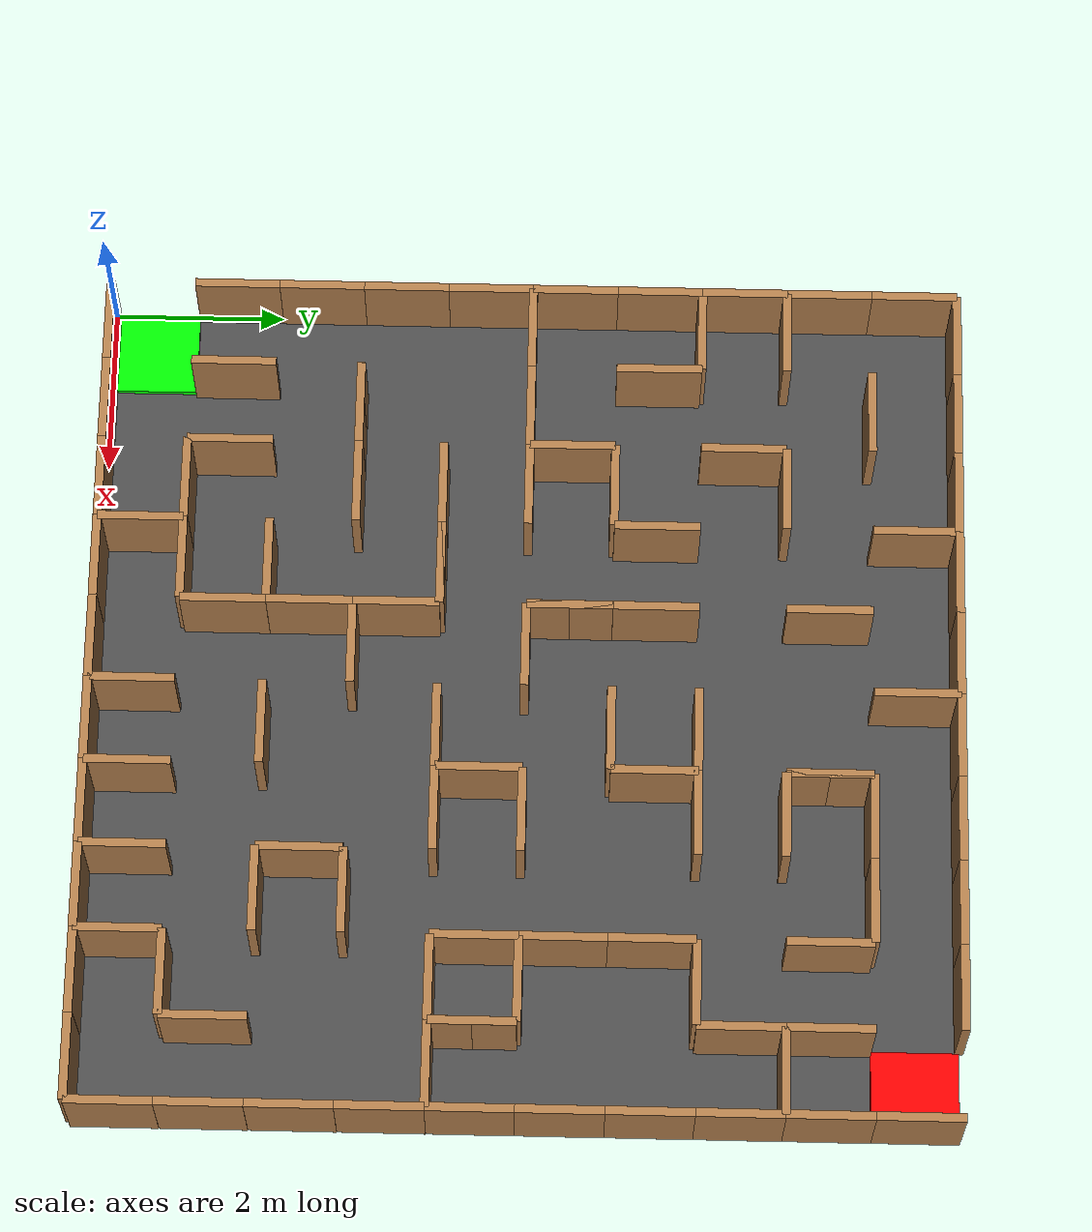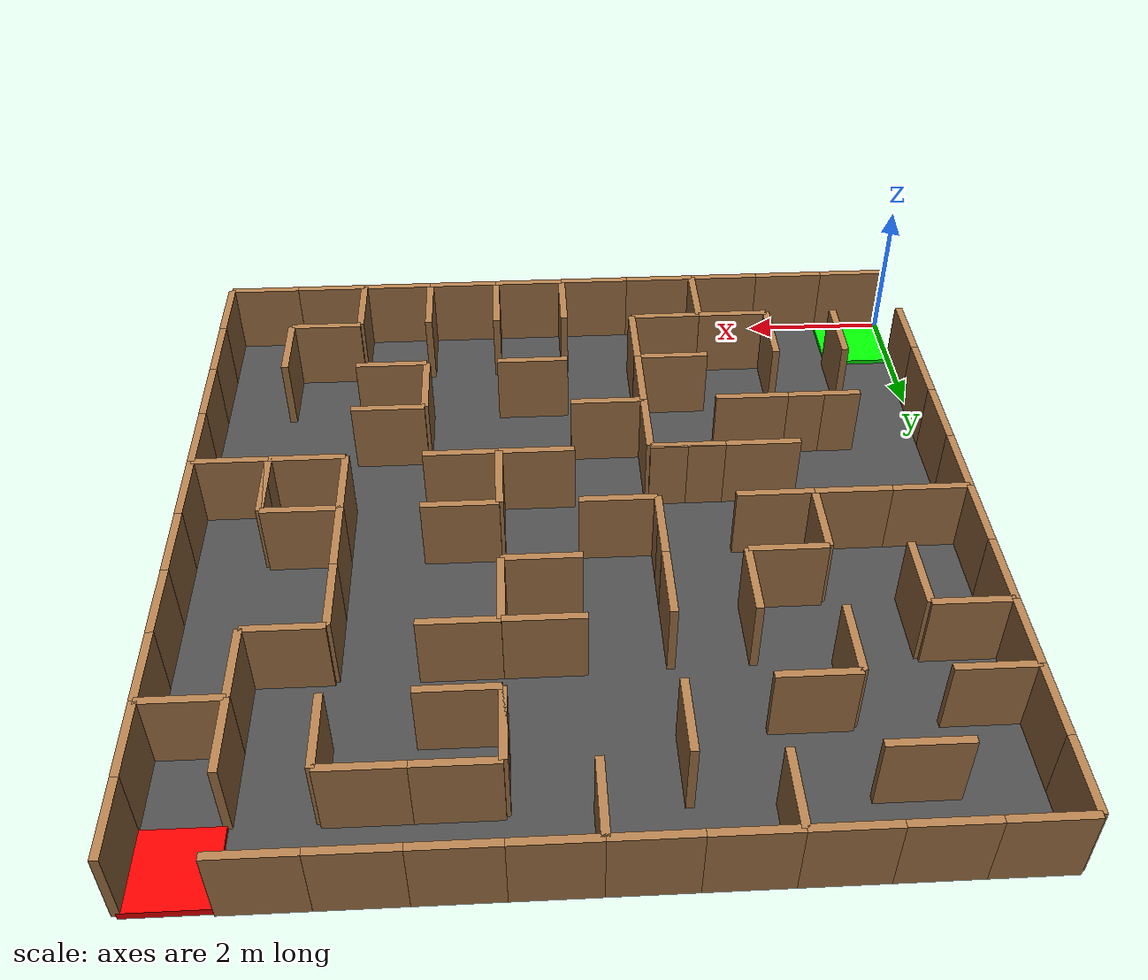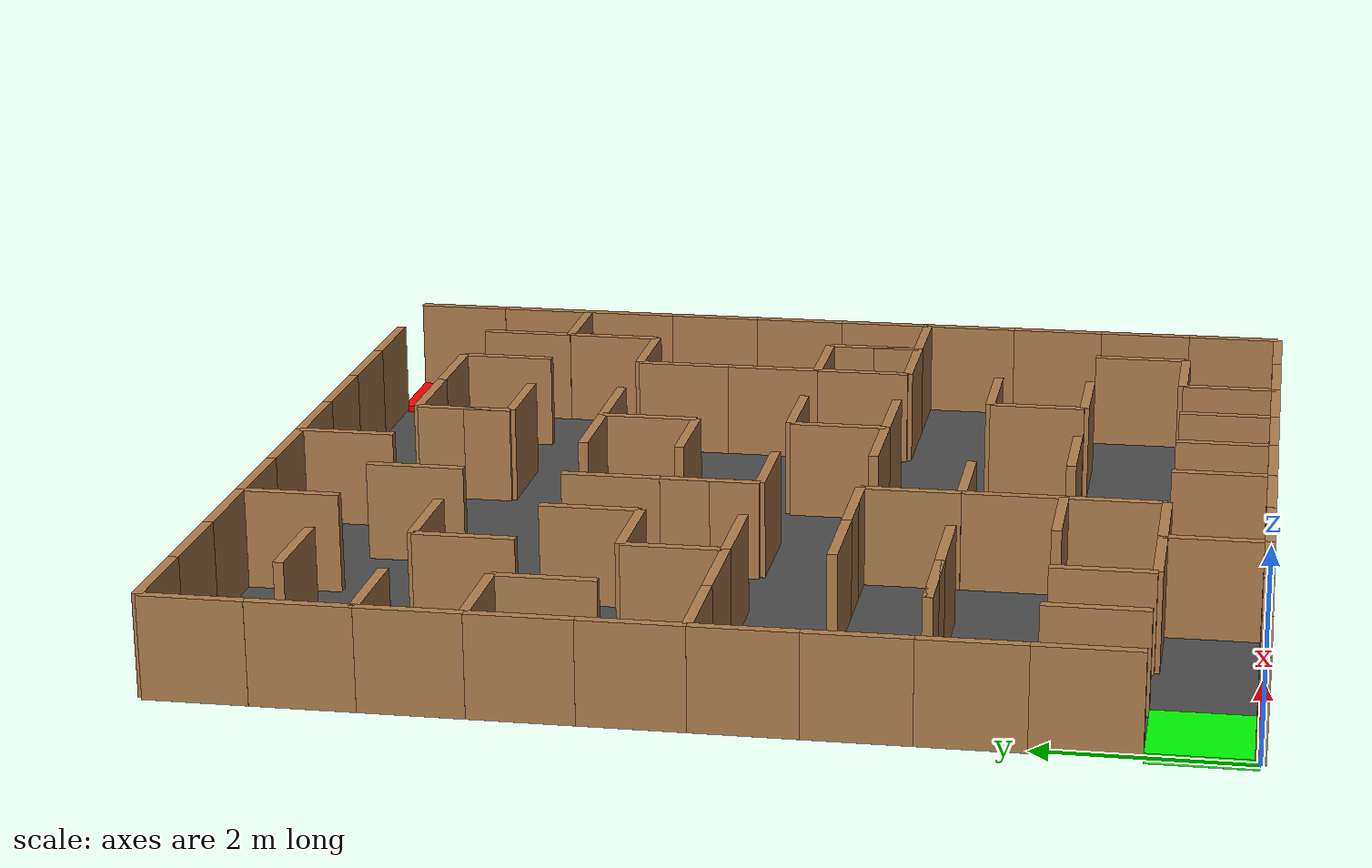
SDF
<?xml version="1.0" ?>
<sdf version="1.4">

  <world name="default">
    <include>
    <uri>model://slam_maze</uri>
    </include>

    <include>
      <uri>model://slam_maze_plane</uri>
      <pose>5 5 0 0 0 0</pose>
    </include>

    <include>
      <uri>model://slam_maze_start</uri>
      <pose>0 0 0 0 0 0</pose>
    </include>

    <include>
      <uri>model://slam_maze_end</uri>
      <pose>9 9 0 0 0 0</pose>
    </include>

    <!-- Global light source -->
    <light type="directional" name="sun_east">
      <cast_shadows>false</cast_shadows>
      <pose>5 5 10 0 0 0</pose>
      <attenuation>
        <range>1000</range>
        <constant>0.9</constant>
        <linear>0.01</linear>
        <quadratic>0.001</quadratic>
      </attenuation>
      <direction>-1 0 -1</direction>
    </light>

    <light type="directional" name="sun_west">
      <cast_shadows>false</cast_shadows>
      <pose>5 5 10 0 0 0</pose>
      <attenuation>
        <range>1000</range>
        <constant>0.9</constant>
        <linear>0.01</linear>
        <quadratic>0.001</quadratic>
      </attenuation>
      <direction>1 0 -1</direction>
    </light>

    <light type="directional" name="sun_north">
      <cast_shadows>false</cast_shadows>
      <pose>5 5 10 0 0 0</pose>
      <attenuation>
        <range>1000</range>
        <constant>0.9</constant>
        <linear>0.01</linear>
        <quadratic>0.001</quadratic>
      </attenuation>
      <direction>0 -1 -1</direction>
    </light>

    <light type="directional" name="sun_south">
      <cast_shadows>false</cast_shadows>
      <pose>5 5 10 0 0 0</pose>
      <attenuation>
        <range>1000</range>
        <constant>0.9</constant>
        <linear>0.01</linear>
        <quadratic>0.001</quadratic>
      </attenuation>
      <direction>0 1 -1</direction>
    </light>

    <!-- Focus camera on tall pendulum -->
    <gui fullscreen='0'>
      <camera name='user_camera'>
        <pose>6.430755 1.382297 27.940647 0.000000 1.411641 1.500187</pose>
        <view_controller>orbit</view_controller>
      </camera>
    </gui>

  </world>
</sdf>

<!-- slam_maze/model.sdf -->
<sdf version='1.6'>
<model name='slam_maze'>
<static>true</static>
<include>
<uri>../models/maze/slam_maze_wall</uri>
<pose>0.5 1.500000 0 0 0 1.570000</pose>
</include>
<include>
<uri>../models/maze/slam_maze_wall</uri>
<pose>0.5 2.500000 0 0 0 1.570000</pose>
</include>
<include>
<uri>../models/maze/slam_maze_wall</uri>
<pose>0.5 3.500000 0 0 0 1.570000</pose>
</include>
<include>
<uri>../models/maze/slam_maze_wall</uri>
<pose>0.5 4.500000 0 0 0 1.570000</pose>
</include>
<include>
<uri>../models/maze/slam_maze_wall</uri>
<pose>0.5 5.500000 0 0 0 1.570000</pose>
</include>
<include>
<uri>../models/maze/slam_maze_wall</uri>
<pose>0.5 6.500000 0 0 0 1.570000</pose>
</include>
<include>
<uri>../models/maze/slam_maze_wall</uri>
<pose>0.5 7.500000 0 0 0 1.570000</pose>
</include>
<include>
<uri>../models/maze/slam_maze_wall</uri>
<pose>0.5 8.500000 0 0 0 1.570000</pose>
</include>
<include>
<uri>../models/maze/slam_maze_wall</uri>
<pose>0.5 9.500000 0 0 0 1.570000</pose>
</include>
<include>
<uri>../models/maze/slam_maze_wall</uri>
<pose>9.5 0.500000 0 0 0 4.710000</pose>
</include>
<include>
<uri>../models/maze/slam_maze_wall</uri>
<pose>9.5 1.500000 0 0 0 4.710000</pose>
</include>
<include>
<uri>../models/maze/slam_maze_wall</uri>
<pose>9.5 2.500000 0 0 0 4.710000</pose>
</include>
<include>
<uri>../models/maze/slam_maze_wall</uri>
<pose>9.5 3.500000 0 0 0 4.710000</pose>
</include>
<include>
<uri>../models/maze/slam_maze_wall</uri>
<pose>9.5 4.500000 0 0 0 4.710000</pose>
</include>
<include>
<uri>../models/maze/slam_maze_wall</uri>
<pose>9.5 5.500000 0 0 0 4.710000</pose>
</include>
<include>
<uri>../models/maze/slam_maze_wall</uri>
<pose>9.5 6.500000 0 0 0 4.710000</pose>
</include>
<include>
<uri>../models/maze/slam_maze_wall</uri>
<pose>9.5 7.500000 0 0 0 4.710000</pose>
</include>
<include>
<uri>../models/maze/slam_maze_wall</uri>
<pose>9.5 8.500000 0 0 0 4.710000</pose>
</include>
<include>
<uri>../models/maze/slam_maze_wall</uri>
<pose>9.5 9.500000 0 0 0 4.710000</pose>
</include>
<include>
<uri>../models/maze/slam_maze_wall</uri>
<pose>0.500000 9.5 0 0 0 0.000000</pose>
</include>
<include>
<uri>../models/maze/slam_maze_wall</uri>
<pose>1.500000 9.5 0 0 0 0.000000</pose>
</include>
<include>
<uri>../models/maze/slam_maze_wall</uri>
<pose>2.500000 9.5 0 0 0 0.000000</pose>
</include>
<include>
<uri>../models/maze/slam_maze_wall</uri>
<pose>3.500000 9.5 0 0 0 0.000000</pose>
</include>
<include>
<uri>../models/maze/slam_maze_wall</uri>
<pose>4.500000 9.5 0 0 0 0.000000</pose>
</include>
<include>
<uri>../models/maze/slam_maze_wall</uri>
<pose>5.500000 9.5 0 0 0 0.000000</pose>
</include>
<include>
<uri>../models/maze/slam_maze_wall</uri>
<pose>6.500000 9.5 0 0 0 0.000000</pose>
</include>
<include>
<uri>../models/maze/slam_maze_wall</uri>
<pose>7.500000 9.5 0 0 0 0.000000</pose>
</include>
<include>
<uri>../models/maze/slam_maze_wall</uri>
<pose>8.500000 9.5 0 0 0 0.000000</pose>
</include>
<include>
<uri>../models/maze/slam_maze_wall</uri>
<pose>0.500000 0.5 0 0 0 3.140000</pose>
</include>
<include>
<uri>../models/maze/slam_maze_wall</uri>
<pose>1.500000 0.5 0 0 0 3.140000</pose>
</include>
<include>
<uri>../models/maze/slam_maze_wall</uri>
<pose>2.500000 0.5 0 0 0 3.140000</pose>
</include>
<include>
<uri>../models/maze/slam_maze_wall</uri>
<pose>3.500000 0.5 0 0 0 3.140000</pose>
</include>
<include>
<uri>../models/maze/slam_maze_wall</uri>
<pose>4.500000 0.5 0 0 0 3.140000</pose>
</include>
<include>
<uri>../models/maze/slam_maze_wall</uri>
<pose>5.500000 0.5 0 0 0 3.140000</pose>
</include>
<include>
<uri>../models/maze/slam_maze_wall</uri>
<pose>6.500000 0.5 0 0 0 3.140000</pose>
</include>
<include>
<uri>../models/maze/slam_maze_wall</uri>
<pose>7.500000 0.5 0 0 0 3.140000</pose>
</include>
<include>
<uri>../models/maze/slam_maze_wall</uri>
<pose>8.500000 0.5 0 0 0 3.140000</pose>
</include>
<include>
<uri>../models/maze/slam_maze_wall</uri>
<pose>9.500000 0.5 0 0 0 3.140000</pose>
</include>
<include>
<uri>../models/maze/slam_maze_wall</uri>
<pose>3.500000 9.500000 0 0 0 0.000000</pose>
</include>
<include>
<uri>../models/maze/slam_maze_wall</uri>
<pose>1.500000 2.500000 0 0 0 0.000000</pose>
</include>
<include>
<uri>../models/maze/slam_maze_wall</uri>
<pose>7.500000 2.500000 0 0 0 0.000000</pose>
</include>
<include>
<uri>../models/maze/slam_maze_wall</uri>
<pose>7.500000 4.500000 0 0 0 4.710000</pose>
</include>
<include>
<uri>../models/maze/slam_maze_wall</uri>
<pose>5.500000 8.500000 0 0 0 4.710000</pose>
</include>
<include>
<uri>../models/maze/slam_maze_wall</uri>
<pose>8.500000 5.500000 0 0 0 3.140000</pose>
</include>
<include>
<uri>../models/maze/slam_maze_wall</uri>
<pose>8.500000 1.500000 0 0 0 3.140000</pose>
</include>
<include>
<uri>../models/maze/slam_maze_wall</uri>
<pose>4.500000 0.500000 0 0 0 4.710000</pose>
</include>
<include>
<uri>../models/maze/slam_maze_wall</uri>
<pose>8.500000 3.500000 0 0 0 0.000000</pose>
</include>
<include>
<uri>../models/maze/slam_maze_wall</uri>
<pose>2.500000 2.500000 0 0 0 0.000000</pose>
</include>
<include>
<uri>../models/maze/slam_maze_wall</uri>
<pose>4.500000 6.500000 0 0 0 1.570000</pose>
</include>
<include>
<uri>../models/maze/slam_maze_wall</uri>
<pose>5.500000 7.500000 0 0 0 3.140000</pose>
</include>
<include>
<uri>../models/maze/slam_maze_wall</uri>
<pose>2.500000 9.500000 0 0 0 4.710000</pose>
</include>
<include>
<uri>../models/maze/slam_maze_wall</uri>
<pose>5.500000 4.500000 0 0 0 4.710000</pose>
</include>
<include>
<uri>../models/maze/slam_maze_wall</uri>
<pose>9.500000 1.500000 0 0 0 1.570000</pose>
</include>
<include>
<uri>../models/maze/slam_maze_wall</uri>
<pose>2.500000 6.500000 0 0 0 3.140000</pose>
</include>
<include>
<uri>../models/maze/slam_maze_wall</uri>
<pose>2.500000 0.500000 0 0 0 4.710000</pose>
</include>
<include>
<uri>../models/maze/slam_maze_wall</uri>
<pose>8.500000 8.500000 0 0 0 1.570000</pose>
</include>
<include>
<uri>../models/maze/slam_maze_wall</uri>
<pose>5.500000 5.500000 0 0 0 0.000000</pose>
</include>
<include>
<uri>../models/maze/slam_maze_wall</uri>
<pose>4.500000 9.500000 0 0 0 4.710000</pose>
</include>
<include>
<uri>../models/maze/slam_maze_wall</uri>
<pose>3.500000 4.500000 0 0 0 3.140000</pose>
</include>
<include>
<uri>../models/maze/slam_maze_wall</uri>
<pose>3.500000 1.500000 0 0 0 0.000000</pose>
</include>
<include>
<uri>../models/maze/slam_maze_wall</uri>
<pose>1.500000 9.500000 0 0 0 3.140000</pose>
</include>
<include>
<uri>../models/maze/slam_maze_wall</uri>
<pose>8.500000 7.500000 0 0 0 4.710000</pose>
</include>
<include>
<uri>../models/maze/slam_maze_wall</uri>
<pose>1.500000 3.500000 0 0 0 3.140000</pose>
</include>
<include>
<uri>../models/maze/slam_maze_wall</uri>
<pose>0.500000 5.500000 0 0 0 1.570000</pose>
</include>
<include>
<uri>../models/maze/slam_maze_wall</uri>
<pose>6.500000 7.500000 0 0 0 0.000000</pose>
</include>
<include>
<uri>../models/maze/slam_maze_wall</uri>
<pose>5.500000 0.500000 0 0 0 4.710000</pose>
</include>
<include>
<uri>../models/maze/slam_maze_wall</uri>
<pose>7.500000 0.500000 0 0 0 4.710000</pose>
</include>
<include>
<uri>../models/maze/slam_maze_wall</uri>
<pose>1.500000 7.500000 0 0 0 4.710000</pose>
</include>
<include>
<uri>../models/maze/slam_maze_wall</uri>
<pose>2.500000 4.500000 0 0 0 0.000000</pose>
</include>
<include>
<uri>../models/maze/slam_maze_wall</uri>
<pose>4.500000 8.500000 0 0 0 1.570000</pose>
</include>
<include>
<uri>../models/maze/slam_maze_wall</uri>
<pose>9.500000 7.500000 0 0 0 0.000000</pose>
</include>
<include>
<uri>../models/maze/slam_maze_wall</uri>
<pose>8.500000 9.500000 0 0 0 0.000000</pose>
</include>
<include>
<uri>../models/maze/slam_maze_wall</uri>
<pose>9.500000 0.500000 0 0 0 3.140000</pose>
</include>
<include>
<uri>../models/maze/slam_maze_wall</uri>
<pose>6.500000 2.500000 0 0 0 4.710000</pose>
</include>
<include>
<uri>../models/maze/slam_maze_wall</uri>
<pose>3.500000 0.500000 0 0 0 0.000000</pose>
</include>
<include>
<uri>../models/maze/slam_maze_wall</uri>
<pose>6.500000 4.500000 0 0 0 0.000000</pose>
</include>
<include>
<uri>../models/maze/slam_maze_wall</uri>
<pose>3.500000 3.500000 0 0 0 0.000000</pose>
</include>
<include>
<uri>../models/maze/slam_maze_wall</uri>
<pose>2.500000 3.500000 0 0 0 0.000000</pose>
</include>
<include>
<uri>../models/maze/slam_maze_wall</uri>
<pose>9.500000 3.500000 0 0 0 0.000000</pose>
</include>
<include>
<uri>../models/maze/slam_maze_wall</uri>
<pose>9.500000 8.500000 0 0 0 1.570000</pose>
</include>
<include>
<uri>../models/maze/slam_maze_wall</uri>
<pose>0.500000 3.500000 0 0 0 1.570000</pose>
</include>
<include>
<uri>../models/maze/slam_maze_wall</uri>
<pose>1.500000 0.500000 0 0 0 3.140000</pose>
</include>
<include>
<uri>../models/maze/slam_maze_wall</uri>
<pose>0.500000 4.500000 0 0 0 0.000000</pose>
</include>
<include>
<uri>../models/maze/slam_maze_wall</uri>
<pose>1.500000 5.500000 0 0 0 3.140000</pose>
</include>
<include>
<uri>../models/maze/slam_maze_wall</uri>
<pose>4.500000 2.500000 0 0 0 0.000000</pose>
</include>
<include>
<uri>../models/maze/slam_maze_wall</uri>
<pose>9.500000 4.500000 0 0 0 1.570000</pose>
</include>
<include>
<uri>../models/maze/slam_maze_wall</uri>
<pose>6.500000 0.500000 0 0 0 4.710000</pose>
</include>
<include>
<uri>../models/maze/slam_maze_wall</uri>
<pose>4.500000 1.500000 0 0 0 1.570000</pose>
</include>
<include>
<uri>../models/maze/slam_maze_wall</uri>
<pose>9.500000 5.500000 0 0 0 4.710000</pose>
</include>
<include>
<uri>../models/maze/slam_maze_wall</uri>
<pose>3.500000 2.500000 0 0 0 4.710000</pose>
</include>
<include>
<uri>../models/maze/slam_maze_wall</uri>
<pose>5.500000 3.500000 0 0 0 0.000000</pose>
</include>
<include>
<uri>../models/maze/slam_maze_wall</uri>
<pose>6.500000 6.500000 0 0 0 0.000000</pose>
</include>
<include>
<uri>../models/maze/slam_maze_wall</uri>
<pose>1.500000 1.500000 0 0 0 4.710000</pose>
</include>
<include>
<uri>../models/maze/slam_maze_wall</uri>
<pose>4.500000 4.500000 0 0 0 0.000000</pose>
</include>
<include>
<uri>../models/maze/slam_maze_wall</uri>
<pose>7.500000 9.500000 0 0 0 3.140000</pose>
</include>
<include>
<uri>../models/maze/slam_maze_wall</uri>
<pose>5.500000 1.500000 0 0 0 0.000000</pose>
</include>
<include>
<uri>../models/maze/slam_maze_wall</uri>
<pose>6.500000 9.500000 0 0 0 3.140000</pose>
</include>
<include>
<uri>../models/maze/slam_maze_wall</uri>
<pose>0.500000 8.500000 0 0 0 3.140000</pose>
</include>
<include>
<uri>../models/maze/slam_maze_wall</uri>
<pose>8.500000 6.500000 0 0 0 0.000000</pose>
</include>
<include>
<uri>../models/maze/slam_maze_wall</uri>
<pose>9.500000 2.500000 0 0 0 4.710000</pose>
</include>
<include>
<uri>../models/maze/slam_maze_wall</uri>
<pose>3.500000 6.500000 0 0 0 1.570000</pose>
</include>
<include>
<uri>../models/maze/slam_maze_wall</uri>
<pose>0.500000 7.500000 0 0 0 3.140000</pose>
</include>
<include>
<uri>../models/maze/slam_maze_wall</uri>
<pose>3.500000 5.500000 0 0 0 4.710000</pose>
</include>
<include>
<uri>../models/maze/slam_maze_wall</uri>
<pose>0.500000 1.500000 0 0 0 4.710000</pose>
</include>
<include>
<uri>../models/maze/slam_maze_wall</uri>
<pose>1.500000 6.500000 0 0 0 1.570000</pose>
</include>
<include>
<uri>../models/maze/slam_maze_wall</uri>
<pose>7.500000 6.500000 0 0 0 4.710000</pose>
</include>
<include>
<uri>../models/maze/slam_maze_wall</uri>
<pose>8.500000 4.500000 0 0 0 4.710000</pose>
</include>
<include>
<uri>../models/maze/slam_maze_wall</uri>
<pose>6.500000 3.500000 0 0 0 0.000000</pose>
</include>
<include>
<uri>../models/maze/slam_maze_wall</uri>
<pose>6.500000 8.500000 0 0 0 1.570000</pose>
</include>
<include>
<uri>../models/maze/slam_maze_wall</uri>
<pose>8.500000 0.500000 0 0 0 3.140000</pose>
</include>
<include>
<uri>../models/maze/slam_maze_wall</uri>
<pose>7.500000 5.500000 0 0 0 4.710000</pose>
</include>
<include>
<uri>../models/maze/slam_maze_wall</uri>
<pose>7.500000 1.500000 0 0 0 0.000000</pose>
</include>
<include>
<uri>../models/maze/slam_maze_wall</uri>
<pose>2.500000 5.500000 0 0 0 1.570000</pose>
</include>
<include>
<uri>../models/maze/slam_maze_wall</uri>
<pose>2.500000 8.500000 0 0 0 3.140000</pose>
</include>
<include>
<uri>../models/maze/slam_maze_wall</uri>
<pose>5.500000 6.500000 0 0 0 4.710000</pose>
</include>
<include>
<uri>../models/maze/slam_maze_wall</uri>
<pose>2.500000 1.500000 0 0 0 3.140000</pose>
</include>
<include>
<uri>../models/maze/slam_maze_wall</uri>
<pose>4.500000 5.500000 0 0 0 1.570000</pose>
</include>
<include>
<uri>../models/maze/slam_maze_wall</uri>
<pose>4.500000 3.500000 0 0 0 1.570000</pose>
</include>
</model>
</sdf>

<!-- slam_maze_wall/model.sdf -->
<sdf version="1.5">
  <model name="cube">
    <static>true</static>
    <link name="link">
      <pose>0 0.5 0.5 0 0 0</pose>
      <collision name="collision">
        <geometry>
          <box>
            <size>1 0.1 1</size>
          </box>
        </geometry>
      </collision>
      <visual name="visual">
        <geometry>
          <box>
            <size>1 0.1 1</size>
          </box>
        </geometry>
        <material>
          <diffuse>0.25 0.25 0.25 1</diffuse>
          <script>
            <uri>../../media/materials/scripts/my.material</uri>
            <name>wood</name>
          </script>
        </material>
      </visual>
    </link>
  </model>
</sdf>

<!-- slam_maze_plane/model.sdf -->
<sdf version="1.5">
  <model name="plane">
    <static>true</static>
    <link name="link">
      <collision name="collision">
        <geometry>
          <plane>
            <normal>0 0 1</normal>
            <size>20 20</size>
          </plane>
        </geometry>
        <surface>
          <contact>
             <collide_bitmask>0xffff</collide_bitmask>
          </contact>
          <friction>
            <ode>
              <mu>100</mu>
              <mu2>50</mu2>
            </ode>
          </friction>
        </surface>
      </collision>
      <visual name="visual">
        <cast_shadows>false</cast_shadows>
        <geometry>
          <plane>
            <normal>0 0 1</normal>
            <size>10 10</size>
          </plane>
        </geometry>
        <material>
          <diffuse>0.3 0.3 0.3 0.5</diffuse>
          <script>
            <uri>../../media/materials/scripts/my.material</uri>
            <name>stage</name>
          </script>
        </material>
      </visual>
    </link>
  </model>
</sdf>

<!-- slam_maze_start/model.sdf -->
<sdf version="1.5">
  <model name="cube">
    <static>true</static>
    <link name="link">
      <pose>0.5 0.5 0 0 0 0</pose>
      <collision name="collision">
        <geometry>
          <box>
            <size>0 0 0</size>
          </box>
        </geometry>
      </collision>
      <visual name="visual">
        <geometry>
          <box>
            <size>1 1 0.1</size>
          </box>
        </geometry>
        <material>
          <ambient>0 1 0 1</ambient>
          <diffuse>0 1 0 1</diffuse>
        </material>
      </visual>
    </link>
  </model>
</sdf>

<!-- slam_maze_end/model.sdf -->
<sdf version="1.5">
  <model name="cube">
    <static>true</static>
    <link name="link">
      <pose>0.5 0.5 0 0 0 0</pose>
      <collision name="collision">
        <geometry>
          <box>
            <size>0 0 0</size>
          </box>
        </geometry>
      </collision>
      <visual name="visual">
        <geometry>
          <box>
            <size>1 1 0.1</size>
          </box>
        </geometry>
        <material>
          <ambient>1 0 0 1</ambient>
          <diffuse>1 0 0 1</diffuse>
        </material>
      </visual>
    </link>
  </model>
</sdf>
